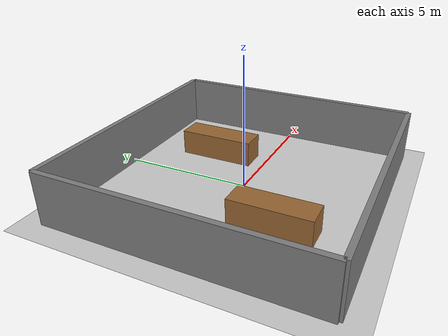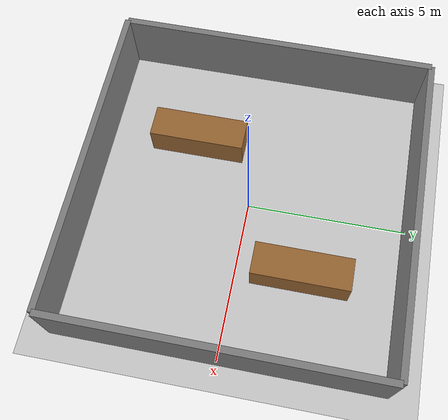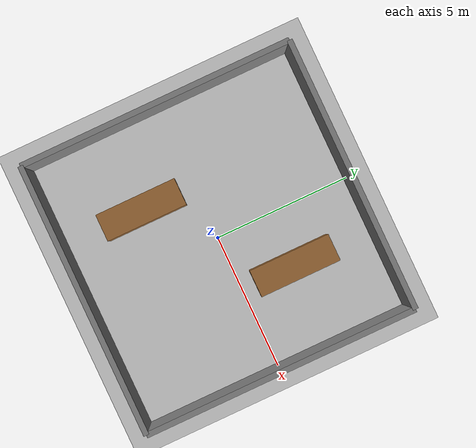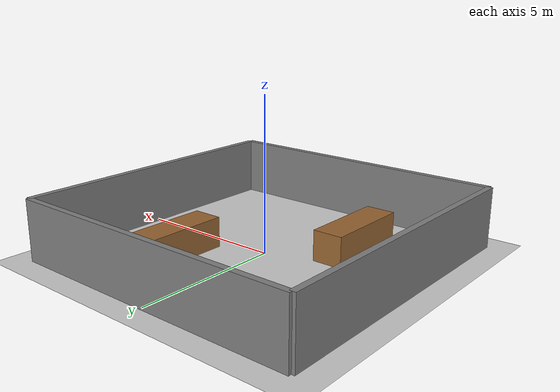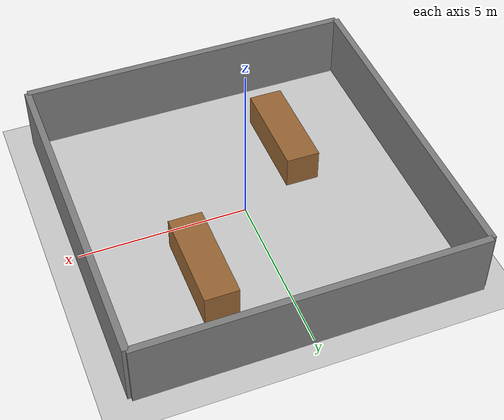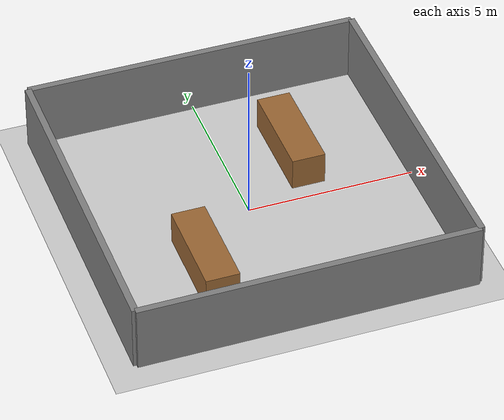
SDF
<?xml version="1.0" ?>
<sdf version="1.8">
  <world name="warehouse">
    <physics name="1ms" type="ignored">
      <max_step_size>0.001</max_step_size>
      <real_time_factor>1.0</real_time_factor>
    </physics>

    <plugin
      filename="gz-sim-physics-system"
      name="gz::sim::systems::Physics">
    </plugin>
    <plugin
      filename="gz-sim-user-commands-system"
      name="gz::sim::systems::UserCommands">
    </plugin>
    <plugin
      filename="gz-sim-scene-broadcaster-system"
      name="gz::sim::systems::SceneBroadcaster">
    </plugin>
    <plugin
      filename="gz-sim-sensors-system"
      name="gz::sim::systems::Sensors">
    </plugin>

    <light type="directional" name="sun">
      <cast_shadows>true</cast_shadows>
      <pose>0 0 10 0 0 0</pose>
      <diffuse>0.8 0.8 0.8 1</diffuse>
      <specular>0.2 0.2 0.2 1</specular>
      <attenuation>
        <range>1000</range>
        <constant>0.9</constant>
        <linear>0.01</linear>
        <quadratic>0.001</quadratic>
      </attenuation>
      <direction>-0.5 0.1 -0.9</direction>
    </light>

    <model name="ground_plane">
      <static>true</static>
      <link name="link">
        <collision name="collision">
          <geometry>
            <plane>
              <normal>0 0 1</normal>
              <size>100 100</size>
            </plane>
          </geometry>
        </collision>
        <visual name="visual">
          <geometry>
            <plane>
              <normal>0 0 1</normal>
              <size>100 100</size>
            </plane>
          </geometry>
          <material>
            <ambient>0.8 0.8 0.8 1</ambient>
            <diffuse>0.8 0.8 0.8 1</diffuse>
          </material>
        </visual>
      </link>
    </model>

    <!-- Walls -->
    <model name="wall_1">
      <static>true</static>
      <pose>0 5 1 0 0 0</pose>
      <link name="link">
        <collision name="col"><geometry><box><size>10 0.2 2</size></box></geometry></collision>
        <visual name="vis">
          <geometry><box><size>10 0.2 2</size></box></geometry>
          <material>
            <ambient>0.5 0.5 0.5 1</ambient>
            <diffuse>0.5 0.5 0.5 1</diffuse>
          </material>
        </visual>
      </link>
    </model>
    <model name="wall_2">
      <static>true</static>
      <pose>0 -5 1 0 0 0</pose>
      <link name="link">
        <collision name="col"><geometry><box><size>10 0.2 2</size></box></geometry></collision>
        <visual name="vis">
          <geometry><box><size>10 0.2 2</size></box></geometry>
          <material>
            <ambient>0.5 0.5 0.5 1</ambient>
            <diffuse>0.5 0.5 0.5 1</diffuse>
          </material>
        </visual>
      </link>
    </model>
    <model name="wall_3">
      <static>true</static>
      <pose>5 0 1 0 0 1.5708</pose>
      <link name="link">
        <collision name="col"><geometry><box><size>10 0.2 2</size></box></geometry></collision>
        <visual name="vis">
          <geometry><box><size>10 0.2 2</size></box></geometry>
          <material>
            <ambient>0.5 0.5 0.5 1</ambient>
            <diffuse>0.5 0.5 0.5 1</diffuse>
          </material>
        </visual>
      </link>
    </model>
    <model name="wall_4">
      <static>true</static>
      <pose>-5 0 1 0 0 1.5708</pose>
      <link name="link">
        <collision name="col"><geometry><box><size>10 0.2 2</size></box></geometry></collision>
        <visual name="vis">
          <geometry><box><size>10 0.2 2</size></box></geometry>
          <material>
            <ambient>0.5 0.5 0.5 1</ambient>
            <diffuse>0.5 0.5 0.5 1</diffuse>
          </material>
        </visual>
      </link>
    </model>

    <!-- Shelves (Static Obstacles) -->
    <model name="shelf_1">
      <static>true</static>
      <pose>2 2 0.5 0 0 0</pose>
      <link name="link">
        <collision name="col"><geometry><box><size>1 3 1</size></box></geometry></collision>
        <visual name="vis"><geometry><box><size>1 3 1</size></box></geometry>
          <material><ambient>0.6 0.4 0.2 1</ambient></material>
        </visual>
      </link>
    </model>

    <model name="shelf_2">
      <static>true</static>
      <pose>-2 -2 0.5 0 0 0</pose>
      <link name="link">
        <collision name="col"><geometry><box><size>1 3 1</size></box></geometry></collision>
        <visual name="vis"><geometry><box><size>1 3 1</size></box></geometry>
          <material><ambient>0.6 0.4 0.2 1</ambient></material>
        </visual>
      </link>
    </model>

  </world>
</sdf>
